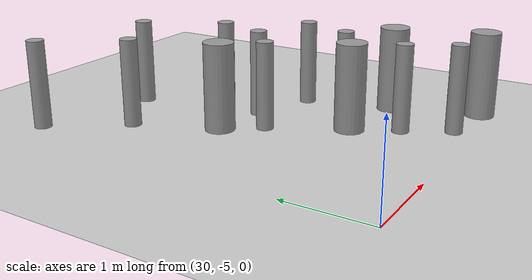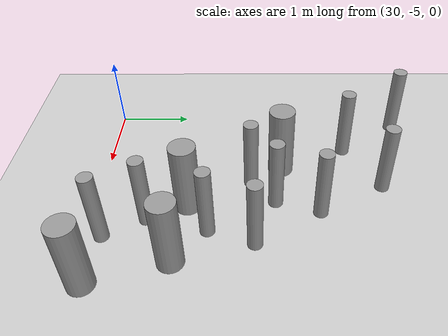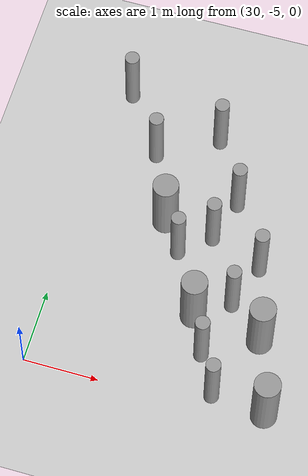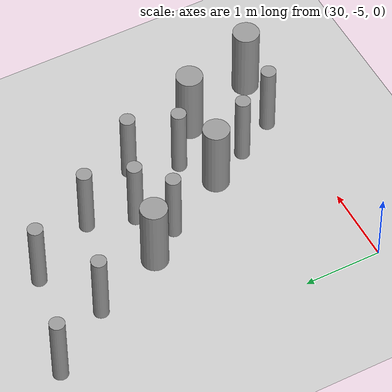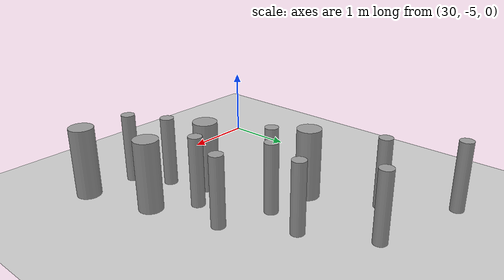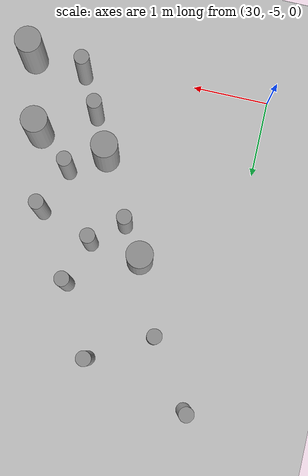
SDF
<sdf version="1.6">
 <world name="default">
  <model name="ground_plane">
   <static>1</static>
   <link name="link">
    <collision name="collision">
     <geometry><plane><normal>0 0 1</normal><size>100 100</size></plane></geometry>
     <surface><friction><ode><mu>100</mu><mu2>50</mu2></ode></friction></surface>
    </collision>
    <visual name="visual">
     <cast_shadows>0</cast_shadows>
     <geometry><plane><normal>0 0 1</normal><size>100 100</size></plane></geometry>
     <material>
      <script><uri>file://media/materials/scripts/gazebo.material</uri><name>Gazebo/Grey</name></script>
     </material>
    </visual>
   </link>
  </model>
  <model name="cyl_wall_clone_clone_1_clone_1_clone_clone_0">
   <link name="link_0">
    <pose>-2.73893 -0.366465 0 0 -0 0</pose>
    <inertial>
     <mass>0.0374993</mass>
     <inertia>
      <ixx>0.00321281</ixx>
      <ixy>0</ixy>
      <ixz>0</ixz>
      <iyy>0.00321281</iyy>
      <iyz>0</iyz>
      <izz>0.000175774</izz>
     </inertia>
    </inertial>
    <visual name="visual">
     <geometry><cylinder><radius>0.0968661</radius><length>1</length></cylinder></geometry>
     <material>
      <lighting>1</lighting>
      <script><uri>file://media/materials/scripts/gazebo.material</uri><name>Gazebo/Grey</name></script>
      <ambient>0.3 0.3 0.3 1</ambient>
      <diffuse>0.7 0.7 0.7 1</diffuse>
      <specular>0.01 0.01 0.01 1</specular>
      <emissive>0 0 0 1</emissive>
     </material>
    </visual>
    <collision name="collision">
     <geometry><cylinder><radius>0.096866</radius><length>1</length></cylinder></geometry>
     <surface>
      <friction>
       <ode><mu>1</mu><mu2>1</mu2><fdir1>0 0 0</fdir1><slip1>0</slip1><slip2>0</slip2></ode>
       <torsional>
        <coefficient>1</coefficient>
        <patch_radius>0</patch_radius>
        <surface_radius>0</surface_radius>
        <use_patch_radius>1</use_patch_radius>
        <ode><slip>0</slip></ode>
       </torsional>
      </friction>
      <bounce><restitution_coefficient>0</restitution_coefficient><threshold>1e+06</threshold></bounce>
      <contact>
       <collide_without_contact>0</collide_without_contact>
       <collide_without_contact_bitmask>1</collide_without_contact_bitmask>
       <collide_bitmask>1</collide_bitmask>
       <ode>
        <soft_cfm>0</soft_cfm>
        <soft_erp>0.2</soft_erp>
        <kp>1e+13</kp>
        <kd>1</kd>
        <max_vel>0.01</max_vel>
        <min_depth>0</min_depth>
       </ode>
       <bullet>
        <split_impulse>1</split_impulse>
        <split_impulse_penetration_threshold>-0.01</split_impulse_penetration_threshold>
        <soft_cfm>0</soft_cfm>
        <soft_erp>0.2</soft_erp>
        <kp>1e+13</kp>
        <kd>1</kd>
       </bullet>
      </contact>
     </surface>
    </collision>
   </link>
   <link name="link_0_clone">
    <pose>-1.73893 0.61877 0 0 -0 0</pose>
    <inertial>
     <mass>0.0374993</mass>
     <inertia>
      <ixx>0.00321281</ixx>
      <ixy>0</ixy>
      <ixz>0</ixz>
      <iyy>0.00321281</iyy>
      <iyz>0</iyz>
      <izz>0.000175774</izz>
     </inertia>
    </inertial>
    <visual name="visual">
     <geometry><cylinder><radius>0.0968661</radius><length>1</length></cylinder></geometry>
     <material>
      <lighting>1</lighting>
      <script><uri>file://media/materials/scripts/gazebo.material</uri><name>Gazebo/Grey</name></script>
      <ambient>0.3 0.3 0.3 1</ambient>
      <diffuse>0.7 0.7 0.7 1</diffuse>
      <specular>0.01 0.01 0.01 1</specular>
      <emissive>0 0 0 1</emissive>
      <shader type="pixel"/>
     </material>
    </visual>
    <collision name="collision">
     <geometry><cylinder><radius>0.096866</radius><length>1</length></cylinder></geometry>
     <surface>
      <friction>
       <ode><mu>1</mu><mu2>1</mu2><fdir1>0 0 0</fdir1><slip1>0</slip1><slip2>0</slip2></ode>
       <torsional>
        <coefficient>1</coefficient>
        <patch_radius>0</patch_radius>
        <surface_radius>0</surface_radius>
        <use_patch_radius>1</use_patch_radius>
        <ode><slip>0</slip></ode>
       </torsional>
      </friction>
      <bounce><restitution_coefficient>0</restitution_coefficient><threshold>1e+06</threshold></bounce>
      <contact>
       <collide_without_contact>0</collide_without_contact>
       <collide_without_contact_bitmask>1</collide_without_contact_bitmask>
       <collide_bitmask>1</collide_bitmask>
       <ode>
        <soft_cfm>0</soft_cfm>
        <soft_erp>0.2</soft_erp>
        <kp>1e+13</kp>
        <kd>1</kd>
        <max_vel>0.01</max_vel>
        <min_depth>0</min_depth>
       </ode>
       <bullet>
        <split_impulse>1</split_impulse>
        <split_impulse_penetration_threshold>-0.01</split_impulse_penetration_threshold>
        <soft_cfm>0</soft_cfm>
        <soft_erp>0.2</soft_erp>
        <kp>1e+13</kp>
        <kd>1</kd>
       </bullet>
      </contact>
     </surface>
    </collision>
   </link>
   <link name="link_0_clone_clone">
    <pose>-0.327073 0.143919 0 0 -0 0</pose>
    <inertial>
     <mass>0.0374993</mass>
     <inertia>
      <ixx>0.00321281</ixx>
      <ixy>0</ixy>
      <ixz>0</ixz>
      <iyy>0.00321281</iyy>
      <iyz>0</iyz>
      <izz>0.000175774</izz>
     </inertia>
    </inertial>
    <visual name="visual">
     <geometry><cylinder><radius>0.0968661</radius><length>1</length></cylinder></geometry>
     <material>
      <lighting>1</lighting>
      <script><uri>file://media/materials/scripts/gazebo.material</uri><name>Gazebo/Grey</name></script>
      <ambient>0.3 0.3 0.3 1</ambient>
      <diffuse>0.7 0.7 0.7 1</diffuse>
      <specular>0.01 0.01 0.01 1</specular>
      <emissive>0 0 0 1</emissive>
      <shader type="pixel"/>
     </material>
    </visual>
    <collision name="collision">
     <geometry><cylinder><radius>0.096866</radius><length>1</length></cylinder></geometry>
     <surface>
      <friction>
       <ode><mu>1</mu><mu2>1</mu2><fdir1>0 0 0</fdir1><slip1>0</slip1><slip2>0</slip2></ode>
       <torsional>
        <coefficient>1</coefficient>
        <patch_radius>0</patch_radius>
        <surface_radius>0</surface_radius>
        <use_patch_radius>1</use_patch_radius>
        <ode><slip>0</slip></ode>
       </torsional>
      </friction>
      <bounce><restitution_coefficient>0</restitution_coefficient><threshold>1e+06</threshold></bounce>
      <contact>
       <collide_without_contact>0</collide_without_contact>
       <collide_without_contact_bitmask>1</collide_without_contact_bitmask>
       <collide_bitmask>1</collide_bitmask>
       <ode>
        <soft_cfm>0</soft_cfm>
        <soft_erp>0.2</soft_erp>
        <kp>1e+13</kp>
        <kd>1</kd>
        <max_vel>0.01</max_vel>
        <min_depth>0</min_depth>
       </ode>
       <bullet>
        <split_impulse>1</split_impulse>
        <split_impulse_penetration_threshold>-0.01</split_impulse_penetration_threshold>
        <soft_cfm>0</soft_cfm>
        <soft_erp>0.2</soft_erp>
        <kp>1e+13</kp>
        <kd>1</kd>
       </bullet>
      </contact>
     </surface>
    </collision>
   </link>
   <link name="link_0_clone_clone_0">
    <pose>1.26107 -0.419359 0 0 -0 0</pose>
    <inertial>
     <mass>0.0374993</mass>
     <inertia>
      <ixx>0.00321281</ixx>
      <ixy>0</ixy>
      <ixz>0</ixz>
      <iyy>0.00321281</iyy>
      <iyz>0</iyz>
      <izz>0.000175774</izz>
     </inertia>
    </inertial>
    <visual name="visual">
     <geometry><cylinder><radius>0.0968661</radius><length>1</length></cylinder></geometry>
     <material>
      <lighting>1</lighting>
      <script><uri>file://media/materials/scripts/gazebo.material</uri><name>Gazebo/Grey</name></script>
      <ambient>0.3 0.3 0.3 1</ambient>
      <diffuse>0.7 0.7 0.7 1</diffuse>
      <specular>0.01 0.01 0.01 1</specular>
      <emissive>0 0 0 1</emissive>
      <shader type="pixel"/>
     </material>
    </visual>
    <collision name="collision">
     <geometry><cylinder><radius>0.096866</radius><length>1</length></cylinder></geometry>
     <surface>
      <friction>
       <ode><mu>1</mu><mu2>1</mu2><fdir1>0 0 0</fdir1><slip1>0</slip1><slip2>0</slip2></ode>
       <torsional>
        <coefficient>1</coefficient>
        <patch_radius>0</patch_radius>
        <surface_radius>0</surface_radius>
        <use_patch_radius>1</use_patch_radius>
        <ode><slip>0</slip></ode>
       </torsional>
      </friction>
      <bounce><restitution_coefficient>0</restitution_coefficient><threshold>1e+06</threshold></bounce>
      <contact>
       <collide_without_contact>0</collide_without_contact>
       <collide_without_contact_bitmask>1</collide_without_contact_bitmask>
       <collide_bitmask>1</collide_bitmask>
       <ode>
        <soft_cfm>0</soft_cfm>
        <soft_erp>0.2</soft_erp>
        <kp>1e+13</kp>
        <kd>1</kd>
        <max_vel>0.01</max_vel>
        <min_depth>0</min_depth>
       </ode>
       <bullet>
        <split_impulse>1</split_impulse>
        <split_impulse_penetration_threshold>-0.01</split_impulse_penetration_threshold>
        <soft_cfm>0</soft_cfm>
        <soft_erp>0.2</soft_erp>
        <kp>1e+13</kp>
        <kd>1</kd>
       </bullet>
      </contact>
     </surface>
    </collision>
   </link>
   <link name="link_0_clone_clone_1">
    <pose>-1.73893 -0.277168 0 0 -0 0</pose>
    <inertial>
     <mass>0.0374993</mass>
     <inertia>
      <ixx>0.00321281</ixx>
      <ixy>0</ixy>
      <ixz>0</ixz>
      <iyy>0.00321281</iyy>
      <iyz>0</iyz>
      <izz>0.000175774</izz>
     </inertia>
    </inertial>
    <visual name="visual">
     <geometry><cylinder><radius>0.0968661</radius><length>1</length></cylinder></geometry>
     <material>
      <lighting>1</lighting>
      <script><uri>file://media/materials/scripts/gazebo.material</uri><name>Gazebo/Grey</name></script>
      <ambient>0.3 0.3 0.3 1</ambient>
      <diffuse>0.7 0.7 0.7 1</diffuse>
      <specular>0.01 0.01 0.01 1</specular>
      <emissive>0 0 0 1</emissive>
      <shader type="pixel"/>
     </material>
    </visual>
    <collision name="collision">
     <geometry><cylinder><radius>0.096866</radius><length>1</length></cylinder></geometry>
     <surface>
      <friction>
       <ode><mu>1</mu><mu2>1</mu2><fdir1>0 0 0</fdir1><slip1>0</slip1><slip2>0</slip2></ode>
       <torsional>
        <coefficient>1</coefficient>
        <patch_radius>0</patch_radius>
        <surface_radius>0</surface_radius>
        <use_patch_radius>1</use_patch_radius>
        <ode><slip>0</slip></ode>
       </torsional>
      </friction>
      <bounce><restitution_coefficient>0</restitution_coefficient><threshold>1e+06</threshold></bounce>
      <contact>
       <collide_without_contact>0</collide_without_contact>
       <collide_without_contact_bitmask>1</collide_without_contact_bitmask>
       <collide_bitmask>1</collide_bitmask>
       <ode>
        <soft_cfm>0</soft_cfm>
        <soft_erp>0.2</soft_erp>
        <kp>1e+13</kp>
        <kd>1</kd>
        <max_vel>0.01</max_vel>
        <min_depth>0</min_depth>
       </ode>
       <bullet>
        <split_impulse>1</split_impulse>
        <split_impulse_penetration_threshold>-0.01</split_impulse_penetration_threshold>
        <soft_cfm>0</soft_cfm>
        <soft_erp>0.2</soft_erp>
        <kp>1e+13</kp>
        <kd>1</kd>
       </bullet>
      </contact>
     </surface>
    </collision>
   </link>
   <link name="link_0_clone_clone_2">
    <pose>-0.738934 0.593961 0 0 -0 0</pose>
    <inertial>
     <mass>0.0374993</mass>
     <inertia>
      <ixx>0.00321281</ixx>
      <ixy>0</ixy>
      <ixz>0</ixz>
      <iyy>0.00321281</iyy>
      <iyz>0</iyz>
      <izz>0.000175774</izz>
     </inertia>
    </inertial>
    <visual name="visual">
     <geometry><cylinder><radius>0.0968661</radius><length>1</length></cylinder></geometry>
     <material>
      <lighting>1</lighting>
      <script><uri>file://media/materials/scripts/gazebo.material</uri><name>Gazebo/Grey</name></script>
      <ambient>0.3 0.3 0.3 1</ambient>
      <diffuse>0.7 0.7 0.7 1</diffuse>
      <specular>0.01 0.01 0.01 1</specular>
      <emissive>0 0 0 1</emissive>
      <shader type="pixel"/>
     </material>
    </visual>
    <collision name="collision">
     <geometry><cylinder><radius>0.096866</radius><length>1</length></cylinder></geometry>
     <surface>
      <friction>
       <ode><mu>1</mu><mu2>1</mu2><fdir1>0 0 0</fdir1><slip1>0</slip1><slip2>0</slip2></ode>
       <torsional>
        <coefficient>1</coefficient>
        <patch_radius>0</patch_radius>
        <surface_radius>0</surface_radius>
        <use_patch_radius>1</use_patch_radius>
        <ode><slip>0</slip></ode>
       </torsional>
      </friction>
      <bounce><restitution_coefficient>0</restitution_coefficient><threshold>1e+06</threshold></bounce>
      <contact>
       <collide_without_contact>0</collide_without_contact>
       <collide_without_contact_bitmask>1</collide_without_contact_bitmask>
       <collide_bitmask>1</collide_bitmask>
       <ode>
        <soft_cfm>0</soft_cfm>
        <soft_erp>0.2</soft_erp>
        <kp>1e+13</kp>
        <kd>1</kd>
        <max_vel>0.01</max_vel>
        <min_depth>0</min_depth>
       </ode>
       <bullet>
        <split_impulse>1</split_impulse>
        <split_impulse_penetration_threshold>-0.01</split_impulse_penetration_threshold>
        <soft_cfm>0</soft_cfm>
        <soft_erp>0.2</soft_erp>
        <kp>1e+13</kp>
        <kd>1</kd>
       </bullet>
      </contact>
     </surface>
    </collision>
   </link>
   <link name="link_0_clone_clone_3">
    <pose>0.261066 0.624849 0 0 -0 0</pose>
    <inertial>
     <mass>0.0374993</mass>
     <inertia>
      <ixx>0.00321281</ixx>
      <ixy>0</ixy>
      <ixz>0</ixz>
      <iyy>0.00321281</iyy>
      <iyz>0</iyz>
      <izz>0.000175774</izz>
     </inertia>
    </inertial>
    <visual name="visual">
     <geometry><cylinder><radius>0.0968661</radius><length>1</length></cylinder></geometry>
     <material>
      <lighting>1</lighting>
      <script><uri>file://media/materials/scripts/gazebo.material</uri><name>Gazebo/Grey</name></script>
      <ambient>0.3 0.3 0.3 1</ambient>
      <diffuse>0.7 0.7 0.7 1</diffuse>
      <specular>0.01 0.01 0.01 1</specular>
      <emissive>0 0 0 1</emissive>
      <shader type="pixel"/>
     </material>
    </visual>
    <collision name="collision">
     <geometry><cylinder><radius>0.096866</radius><length>1</length></cylinder></geometry>
     <surface>
      <friction>
       <ode><mu>1</mu><mu2>1</mu2><fdir1>0 0 0</fdir1><slip1>0</slip1><slip2>0</slip2></ode>
       <torsional>
        <coefficient>1</coefficient>
        <patch_radius>0</patch_radius>
        <surface_radius>0</surface_radius>
        <use_patch_radius>1</use_patch_radius>
        <ode><slip>0</slip></ode>
       </torsional>
      </friction>
      <bounce><restitution_coefficient>0</restitution_coefficient><threshold>1e+06</threshold></bounce>
      <contact>
       <collide_without_contact>0</collide_without_contact>
       <collide_without_contact_bitmask>1</collide_without_contact_bitmask>
       <collide_bitmask>1</collide_bitmask>
       <ode>
        <soft_cfm>0</soft_cfm>
        <soft_erp>0.2</soft_erp>
        <kp>1e+13</kp>
        <kd>1</kd>
        <max_vel>0.01</max_vel>
        <min_depth>0</min_depth>
       </ode>
       <bullet>
        <split_impulse>1</split_impulse>
        <split_impulse_penetration_threshold>-0.01</split_impulse_penetration_threshold>
        <soft_cfm>0</soft_cfm>
        <soft_erp>0.2</soft_erp>
        <kp>1e+13</kp>
        <kd>1</kd>
       </bullet>
      </contact>
     </surface>
    </collision>
   </link>
   <link name="link_0_clone_clone_4">
    <pose>-0.239049 -0.353105 0 0 -0 0</pose>
    <inertial>
     <mass>0.0374993</mass>
     <inertia>
      <ixx>0.00321281</ixx>
      <ixy>0</ixy>
      <ixz>0</ixz>
      <iyy>0.00321281</iyy>
      <iyz>0</iyz>
      <izz>0.000175774</izz>
     </inertia>
    </inertial>
    <visual name="visual">
     <geometry><cylinder><radius>0.0968661</radius><length>1</length></cylinder></geometry>
     <material>
      <lighting>1</lighting>
      <script><uri>file://media/materials/scripts/gazebo.material</uri><name>Gazebo/Grey</name></script>
      <ambient>0.3 0.3 0.3 1</ambient>
      <diffuse>0.7 0.7 0.7 1</diffuse>
      <specular>0.01 0.01 0.01 1</specular>
      <emissive>0 0 0 1</emissive>
      <shader type="pixel"/>
     </material>
    </visual>
    <collision name="collision">
     <geometry><cylinder><radius>0.096866</radius><length>1</length></cylinder></geometry>
     <surface>
      <friction>
       <ode><mu>1</mu><mu2>1</mu2><fdir1>0 0 0</fdir1><slip1>0</slip1><slip2>0</slip2></ode>
       <torsional>
        <coefficient>1</coefficient>
        <patch_radius>0</patch_radius>
        <surface_radius>0</surface_radius>
        <use_patch_radius>1</use_patch_radius>
        <ode><slip>0</slip></ode>
       </torsional>
      </friction>
      <bounce><restitution_coefficient>0</restitution_coefficient><threshold>1e+06</threshold></bounce>
      <contact>
       <collide_without_contact>0</collide_without_contact>
       <collide_without_contact_bitmask>1</collide_without_contact_bitmask>
       <collide_bitmask>1</collide_bitmask>
       <ode>
        <soft_cfm>0</soft_cfm>
        <soft_erp>0.2</soft_erp>
        <kp>1e+13</kp>
        <kd>1</kd>
        <max_vel>0.01</max_vel>
        <min_depth>0</min_depth>
       </ode>
       <bullet>
        <split_impulse>1</split_impulse>
        <split_impulse_penetration_threshold>-0.01</split_impulse_penetration_threshold>
        <soft_cfm>0</soft_cfm>
        <soft_erp>0.2</soft_erp>
        <kp>1e+13</kp>
        <kd>1</kd>
       </bullet>
      </contact>
     </surface>
    </collision>
   </link>
   <link name="link_0_clone_clone_5">
    <pose>0.672792 0.143919 0 0 -0 0</pose>
    <inertial>
     <mass>0.0374993</mass>
     <inertia>
      <ixx>0.00321281</ixx>
      <ixy>0</ixy>
      <ixz>0</ixz>
      <iyy>0.00321281</iyy>
      <iyz>0</iyz>
      <izz>0.000175774</izz>
     </inertia>
    </inertial>
    <visual name="visual">
     <geometry><cylinder><radius>0.0968661</radius><length>1</length></cylinder></geometry>
     <material>
      <lighting>1</lighting>
      <script><uri>file://media/materials/scripts/gazebo.material</uri><name>Gazebo/Grey</name></script>
      <ambient>0.3 0.3 0.3 1</ambient>
      <diffuse>0.7 0.7 0.7 1</diffuse>
      <specular>0.01 0.01 0.01 1</specular>
      <emissive>0 0 0 1</emissive>
      <shader type="pixel"/>
     </material>
    </visual>
    <collision name="collision">
     <geometry><cylinder><radius>0.096866</radius><length>1</length></cylinder></geometry>
     <surface>
      <friction>
       <ode><mu>1</mu><mu2>1</mu2><fdir1>0 0 0</fdir1><slip1>0</slip1><slip2>0</slip2></ode>
       <torsional>
        <coefficient>1</coefficient>
        <patch_radius>0</patch_radius>
        <surface_radius>0</surface_radius>
        <use_patch_radius>1</use_patch_radius>
        <ode><slip>0</slip></ode>
       </torsional>
      </friction>
      <bounce><restitution_coefficient>0</restitution_coefficient><threshold>1e+06</threshold></bounce>
      <contact>
       <collide_without_contact>0</collide_without_contact>
       <collide_without_contact_bitmask>1</collide_without_contact_bitmask>
       <collide_bitmask>1</collide_bitmask>
       <ode>
        <soft_cfm>0</soft_cfm>
        <soft_erp>0.2</soft_erp>
        <kp>1e+13</kp>
        <kd>1</kd>
        <max_vel>0.01</max_vel>
        <min_depth>0</min_depth>
       </ode>
       <bullet>
        <split_impulse>1</split_impulse>
        <split_impulse_penetration_threshold>-0.01</split_impulse_penetration_threshold>
        <soft_cfm>0</soft_cfm>
        <soft_erp>0.2</soft_erp>
        <kp>1e+13</kp>
        <kd>1</kd>
       </bullet>
      </contact>
     </surface>
    </collision>
   </link>
   <link name="link_0_clone_clone_6">
    <pose>1.84596 -0.433423 0 0 -0 0</pose>
    <inertial>
     <mass>0.0374993</mass>
     <inertia>
      <ixx>0.00321281</ixx>
      <ixy>0</ixy>
      <ixz>0</ixz>
      <iyy>0.00321281</iyy>
      <iyz>0</iyz>
      <izz>0.000175774</izz>
     </inertia>
    </inertial>
    <visual name="visual">
     <geometry><cylinder><radius>0.0968661</radius><length>1</length></cylinder></geometry>
     <material>
      <lighting>1</lighting>
      <script><uri>file://media/materials/scripts/gazebo.material</uri><name>Gazebo/Grey</name></script>
      <ambient>0.3 0.3 0.3 1</ambient>
      <diffuse>0.7 0.7 0.7 1</diffuse>
      <specular>0.01 0.01 0.01 1</specular>
      <emissive>0 0 0 1</emissive>
      <shader type="pixel"/>
     </material>
    </visual>
    <collision name="collision">
     <geometry><cylinder><radius>0.096866</radius><length>1</length></cylinder></geometry>
     <surface>
      <friction>
       <ode><mu>1</mu><mu2>1</mu2><fdir1>0 0 0</fdir1><slip1>0</slip1><slip2>0</slip2></ode>
       <torsional>
        <coefficient>1</coefficient>
        <patch_radius>0</patch_radius>
        <surface_radius>0</surface_radius>
        <use_patch_radius>1</use_patch_radius>
        <ode><slip>0</slip></ode>
       </torsional>
      </friction>
      <bounce><restitution_coefficient>0</restitution_coefficient><threshold>1e+06</threshold></bounce>
      <contact>
       <collide_without_contact>0</collide_without_contact>
       <collide_without_contact_bitmask>1</collide_without_contact_bitmask>
       <collide_bitmask>1</collide_bitmask>
       <ode>
        <soft_cfm>0</soft_cfm>
        <soft_erp>0.2</soft_erp>
        <kp>1e+13</kp>
        <kd>1</kd>
        <max_vel>0.01</max_vel>
        <min_depth>0</min_depth>
       </ode>
       <bullet>
        <split_impulse>1</split_impulse>
        <split_impulse_penetration_threshold>-0.01</split_impulse_penetration_threshold>
        <soft_cfm>0</soft_cfm>
        <soft_erp>0.2</soft_erp>
        <kp>1e+13</kp>
        <kd>1</kd>
       </bullet>
      </contact>
     </surface>
    </collision>
   </link>
   <link name="link_1">
    <pose>-0.738934 -0.397931 0 0 -0 0</pose>
    <inertial>
     <mass>0.117398</mass>
     <inertia>
      <ixx>0.0106445</ixx>
      <ixy>0</ixy>
      <ixz>0</ixz>
      <iyy>0.0106445</iyy>
      <iyz>0</iyz>
      <izz>0.00172278</izz>
     </inertia>
    </inertial>
    <visual name="visual">
     <geometry><cylinder><radius>0.171317</radius><length>1</length></cylinder></geometry>
     <material>
      <lighting>1</lighting>
      <script><uri>file://media/materials/scripts/gazebo.material</uri><name>Gazebo/Grey</name></script>
      <ambient>0.3 0.3 0.3 1</ambient>
      <diffuse>0.7 0.7 0.7 1</diffuse>
      <specular>0.01 0.01 0.01 1</specular>
      <emissive>0 0 0 1</emissive>
     </material>
    </visual>
    <collision name="collision">
     <geometry><cylinder><radius>0.171317</radius><length>1</length></cylinder></geometry>
     <surface>
      <friction>
       <ode><mu>1</mu><mu2>1</mu2><fdir1>0 0 0</fdir1><slip1>0</slip1><slip2>0</slip2></ode>
       <torsional>
        <coefficient>1</coefficient>
        <patch_radius>0</patch_radius>
        <surface_radius>0</surface_radius>
        <use_patch_radius>1</use_patch_radius>
        <ode><slip>0</slip></ode>
       </torsional>
      </friction>
      <bounce><restitution_coefficient>0</restitution_coefficient><threshold>1e+06</threshold></bounce>
      <contact>
       <collide_without_contact>0</collide_without_contact>
       <collide_without_contact_bitmask>1</collide_without_contact_bitmask>
       <collide_bitmask>1</collide_bitmask>
       <ode>
        <soft_cfm>0</soft_cfm>
        <soft_erp>0.2</soft_erp>
        <kp>1e+13</kp>
        <kd>1</kd>
        <max_vel>0.01</max_vel>
        <min_depth>0</min_depth>
       </ode>
       <bullet>
        <split_impulse>1</split_impulse>
        <split_impulse_penetration_threshold>-0.01</split_impulse_penetration_threshold>
        <soft_cfm>0</soft_cfm>
        <soft_erp>0.2</soft_erp>
        <kp>1e+13</kp>
        <kd>1</kd>
       </bullet>
      </contact>
     </surface>
    </collision>
   </link>
   <link name="link_1_clone">
    <pose>0.697784 -0.380861 0 0 -0 0</pose>
    <inertial>
     <mass>0.117398</mass>
     <inertia>
      <ixx>0.0106445</ixx>
      <ixy>0</ixy>
      <ixz>0</ixz>
      <iyy>0.0106445</iyy>
      <iyz>0</iyz>
      <izz>0.00172278</izz>
     </inertia>
    </inertial>
    <visual name="visual">
     <geometry><cylinder><radius>0.171317</radius><length>1</length></cylinder></geometry>
     <material>
      <lighting>1</lighting>
      <script><uri>file://media/materials/scripts/gazebo.material</uri><name>Gazebo/Grey</name></script>
      <ambient>0.3 0.3 0.3 1</ambient>
      <diffuse>0.7 0.7 0.7 1</diffuse>
      <specular>0.01 0.01 0.01 1</specular>
      <emissive>0 0 0 1</emissive>
      <shader type="pixel"/>
     </material>
    </visual>
    <collision name="collision">
     <geometry><cylinder><radius>0.171317</radius><length>1</length></cylinder></geometry>
     <surface>
      <friction>
       <ode><mu>1</mu><mu2>1</mu2><fdir1>0 0 0</fdir1><slip1>0</slip1><slip2>0</slip2></ode>
       <torsional>
        <coefficient>1</coefficient>
        <patch_radius>0</patch_radius>
        <surface_radius>0</surface_radius>
        <use_patch_radius>1</use_patch_radius>
        <ode><slip>0</slip></ode>
       </torsional>
      </friction>
      <bounce><restitution_coefficient>0</restitution_coefficient><threshold>1e+06</threshold></bounce>
      <contact>
       <collide_without_contact>0</collide_without_contact>
       <collide_without_contact_bitmask>1</collide_without_contact_bitmask>
       <collide_bitmask>1</collide_bitmask>
       <ode>
        <soft_cfm>0</soft_cfm>
        <soft_erp>0.2</soft_erp>
        <kp>1e+13</kp>
        <kd>1</kd>
        <max_vel>0.01</max_vel>
        <min_depth>0</min_depth>
       </ode>
       <bullet>
        <split_impulse>1</split_impulse>
        <split_impulse_penetration_threshold>-0.01</split_impulse_penetration_threshold>
        <soft_cfm>0</soft_cfm>
        <soft_erp>0.2</soft_erp>
        <kp>1e+13</kp>
        <kd>1</kd>
       </bullet>
      </contact>
     </surface>
    </collision>
   </link>
   <link name="link_1_clone_0">
    <pose>1.26107 0.358974 0 0 -0 0</pose>
    <inertial>
     <mass>0.117398</mass>
     <inertia>
      <ixx>0.0106445</ixx>
      <ixy>0</ixy>
      <ixz>0</ixz>
      <iyy>0.0106445</iyy>
      <iyz>0</iyz>
      <izz>0.00172278</izz>
     </inertia>
    </inertial>
    <visual name="visual">
     <geometry><cylinder><radius>0.171317</radius><length>1</length></cylinder></geometry>
     <material>
      <lighting>1</lighting>
      <script><uri>file://media/materials/scripts/gazebo.material</uri><name>Gazebo/Grey</name></script>
      <ambient>0.3 0.3 0.3 1</ambient>
      <diffuse>0.7 0.7 0.7 1</diffuse>
      <specular>0.01 0.01 0.01 1</specular>
      <emissive>0 0 0 1</emissive>
      <shader type="pixel"/>
     </material>
    </visual>
    <collision name="collision">
     <geometry><cylinder><radius>0.171317</radius><length>1</length></cylinder></geometry>
     <surface>
      <friction>
       <ode><mu>1</mu><mu2>1</mu2><fdir1>0 0 0</fdir1><slip1>0</slip1><slip2>0</slip2></ode>
       <torsional>
        <coefficient>1</coefficient>
        <patch_radius>0</patch_radius>
        <surface_radius>0</surface_radius>
        <use_patch_radius>1</use_patch_radius>
        <ode><slip>0</slip></ode>
       </torsional>
      </friction>
      <bounce><restitution_coefficient>0</restitution_coefficient><threshold>1e+06</threshold></bounce>
      <contact>
       <collide_without_contact>0</collide_without_contact>
       <collide_without_contact_bitmask>1</collide_without_contact_bitmask>
       <collide_bitmask>1</collide_bitmask>
       <ode>
        <soft_cfm>0</soft_cfm>
        <soft_erp>0.2</soft_erp>
        <kp>1e+13</kp>
        <kd>1</kd>
        <max_vel>0.01</max_vel>
        <min_depth>0</min_depth>
       </ode>
       <bullet>
        <split_impulse>1</split_impulse>
        <split_impulse_penetration_threshold>-0.01</split_impulse_penetration_threshold>
        <soft_cfm>0</soft_cfm>
        <soft_erp>0.2</soft_erp>
        <kp>1e+13</kp>
        <kd>1</kd>
       </bullet>
      </contact>
     </surface>
    </collision>
   </link>
   <link name="link_1_clone_1">
    <pose>2.26107 0.143919 0 0 -0 0</pose>
    <inertial>
     <mass>0.117398</mass>
     <inertia>
      <ixx>0.0106445</ixx>
      <ixy>0</ixy>
      <ixz>0</ixz>
      <iyy>0.0106445</iyy>
      <iyz>0</iyz>
      <izz>0.00172278</izz>
     </inertia>
    </inertial>
    <visual name="visual">
     <geometry><cylinder><radius>0.171317</radius><length>1</length></cylinder></geometry>
     <material>
      <lighting>1</lighting>
      <script><uri>file://media/materials/scripts/gazebo.material</uri><name>Gazebo/Grey</name></script>
      <ambient>0.3 0.3 0.3 1</ambient>
      <diffuse>0.7 0.7 0.7 1</diffuse>
      <specular>0.01 0.01 0.01 1</specular>
      <emissive>0 0 0 1</emissive>
      <shader type="pixel"/>
     </material>
    </visual>
    <collision name="collision">
     <geometry><cylinder><radius>0.171317</radius><length>1</length></cylinder></geometry>
     <surface>
      <friction>
       <ode><mu>1</mu><mu2>1</mu2><fdir1>0 0 0</fdir1><slip1>0</slip1><slip2>0</slip2></ode>
       <torsional>
        <coefficient>1</coefficient>
        <patch_radius>0</patch_radius>
        <surface_radius>0</surface_radius>
        <use_patch_radius>1</use_patch_radius>
        <ode><slip>0</slip></ode>
       </torsional>
      </friction>
      <bounce><restitution_coefficient>0</restitution_coefficient><threshold>1e+06</threshold></bounce>
      <contact>
       <collide_without_contact>0</collide_without_contact>
       <collide_without_contact_bitmask>1</collide_without_contact_bitmask>
       <collide_bitmask>1</collide_bitmask>
       <ode>
        <soft_cfm>0</soft_cfm>
        <soft_erp>0.2</soft_erp>
        <kp>1e+13</kp>
        <kd>1</kd>
        <max_vel>0.01</max_vel>
        <min_depth>0</min_depth>
       </ode>
       <bullet>
        <split_impulse>1</split_impulse>
        <split_impulse_penetration_threshold>-0.01</split_impulse_penetration_threshold>
        <soft_cfm>0</soft_cfm>
        <soft_erp>0.2</soft_erp>
        <kp>1e+13</kp>
        <kd>1</kd>
       </bullet>
      </contact>
     </surface>
    </collision>
   </link>
   <static>1</static>
   <pose>31.9024 -2.98996 0.5 0 0 -1.04703</pose>
  </model>
 </world>
</sdf>
